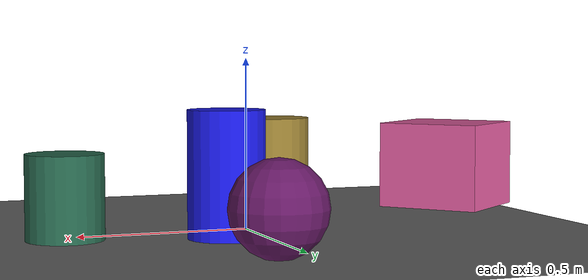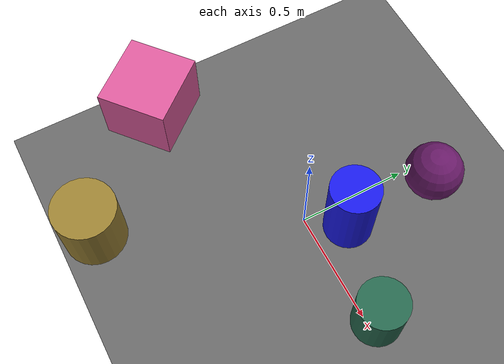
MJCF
<mujoco>
   <asset>
<texture type="skybox" builtin="gradient" rgb1="0.7 0.5 0.3" rgb2="0.3 0.9 0.8" width="256" height="256"/>
<texture name="checker_0" builtin="checker" rgb1="0.0 0.1 0.7" rgb2="0.8 0.1 0.1" width="200" height="200"/>
<texture name="checker_1" builtin="checker" rgb1="0.8 0.6 0.1" rgb2="0.4 0.4 0.3" width="200" height="200"/>
<texture name="gradient_2" builtin="gradient" rgb1="0.3 0.2 0.4" rgb2="0.0 0.6 0.2" width="200" height="200"/>
<texture name="gradient_3" builtin="gradient" rgb1="0.8 0.4 0.9" rgb2="0.9 0.3 0.3" width="200" height="200"/>
<texture name="flat_4" builtin="flat" rgb1="0.1 0.1 0.9" rgb2="0.1 0.1 0.9"  width="200" height="200"/><material name="checker_0_mat" reflectance="0" texrepeat="9 9" texture="checker_0" texuniform="false" />
<material name="checker_1_mat" reflectance="0" texrepeat="3 3" texture="checker_1" texuniform="false" />
<material name="gradient_2_mat" reflectance="0" texture="gradient_2" texuniform="true"/>
<material name="gradient_3_mat" reflectance="0" texture="gradient_3" texuniform="true"/>
<material name="flat_4_mat" reflectance="0" texture="flat_4" texuniform="true"/>
   </asset>

   <worldbody>
      <light diffuse=".9 .9 .9" pos="0 0 3" dir="0 0 -1"/>
     <geom type="plane" size="1 1 0.1" rgba="0.4 0.4 0.4 1"/>
<geom type="sphere" pos="0.11 0.59 0.13" size="0.13 0.13 0.13" material="checker_0_mat" euler="0 0 72" />
<geom type="cylinder" pos="-0.37 -0.84 0.14" size="0.14 0.14 0.14" material="checker_1_mat" euler="0 0 75" />
<geom type="cylinder" pos="0.54 0.04 0.12" size="0.11 0.12 0.12" material="gradient_2_mat" euler="0 0 6" />
<geom type="box" pos="-0.83 -0.35 0.14" size="0.16 0.17 0.14" material="gradient_3_mat" euler="0 0 40" />
<geom type="cylinder" pos="0.11 0.16 0.18" size="0.11 0.18 0.18" material="flat_4_mat" euler="0 0 78" /><camera euler="60 0 180" fovy="60" name="camera2" pos="0.2 -1.5 1"></camera>   </worldbody>
</mujoco>
